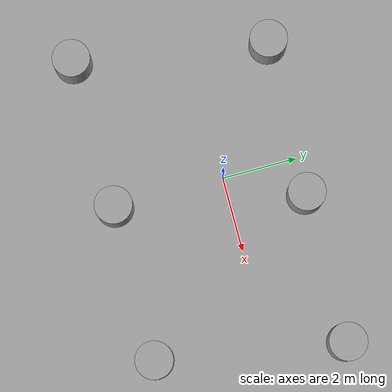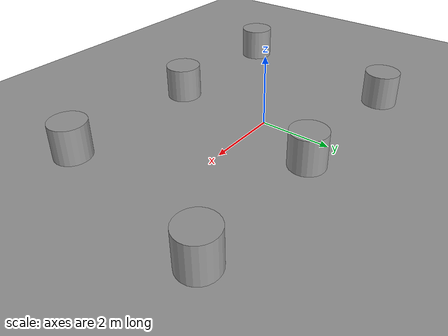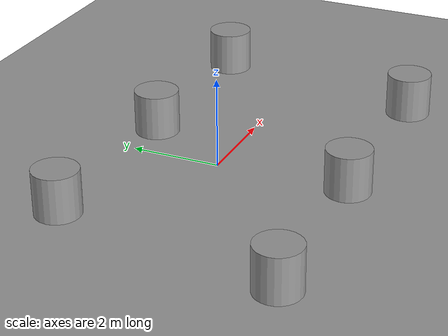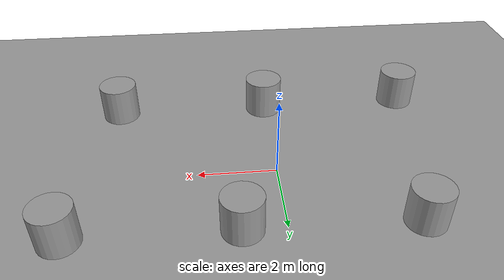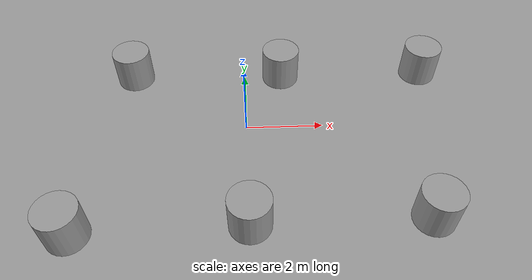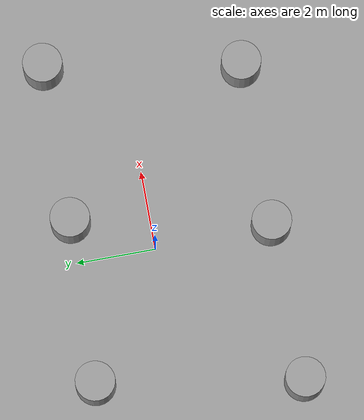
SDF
<sdf version="1.6">
 <world name="default">
  <light name="sun" type="directional">
   <pose>0 0 10 0 -0 0</pose>
   <diffuse>0.8 0.8 0.8 1</diffuse>
   <specular>0.2 0.2 0.2 1</specular>
   <attenuation>
    <range>1000</range>
    <constant>0.9</constant>
    <linear>0.01</linear>
    <quadratic>0.001</quadratic>
   </attenuation>
   <direction>0.5 0.1 -0.9</direction>
  </light>
  <scene><ambient>0.4 0.4 0.4 1</ambient><background>0.7 0.7 0.7 1</background><shadows>1</shadows></scene>
  <physics name="default_physics" default="0" type="ode">
   <max_step_size>0.01</max_step_size>
   <real_time_factor>1</real_time_factor>
   <real_time_update_rate>100</real_time_update_rate>
  </physics>
  <model name="ground_plane_0">
   <static>1</static>
   <link name="link">
    <collision name="collision">
     <geometry><plane><normal>0 0 1</normal><size>100 100</size></plane></geometry>
     <surface><friction><ode><mu>100</mu><mu2>50</mu2></ode></friction></surface>
    </collision>
    <visual name="visual">
     <cast_shadows>0</cast_shadows>
     <geometry><plane><normal>0 0 1</normal><size>100 100</size></plane></geometry>
     <material>
      <script><uri>file://media/materials/scripts/gazebo.material</uri><name>Gazebo/Grey</name></script>
     </material>
    </visual>
    <velocity_decay><linear>0</linear><angular>0</angular></velocity_decay>
   </link>
   <pose>0.497681 0 0 0 -0 0</pose>
  </model>
  <gravity>0 0 -9.8</gravity>
  <magnetic_field>6e-06 2.3e-05 -4.2e-05</magnetic_field>
  <atmosphere type="adiabatic"/>
  <audio><device>default</device></audio>
  <spherical_coordinates>
   <surface_model>EARTH_WGS84</surface_model>
   <latitude_deg>0</latitude_deg>
   <longitude_deg>0</longitude_deg>
   <elevation>0</elevation>
   <heading_deg>0</heading_deg>
  </spherical_coordinates>
  <model name="unit_cylinder">
   <pose>-3.95453 -3.03027 0.499824 -0.000249 -0.000249 -5e-06</pose>
   <link name="link">
    <inertial>
     <mass>1</mass>
     <inertia><ixx>0.145833</ixx><ixy>0</ixy><ixz>0</ixz><iyy>0.145833</iyy><iyz>0</iyz><izz>0.125</izz></inertia>
    </inertial>
    <collision name="collision">
     <geometry><cylinder><radius>0.5</radius><length>1</length></cylinder></geometry>
    </collision>
    <visual name="visual">
     <geometry><cylinder><radius>0.5</radius><length>1</length></cylinder></geometry>
     <material>
      <script><name>Gazebo/Grey</name><uri>file://media/materials/scripts/gazebo.material</uri></script>
     </material>
    </visual>
   </link>
  </model>
  <model name="unit_cylinder_0">
   <pose>0.046162 -2.94575 0.499096 4.8e-05 4.8e-05 -5e-06</pose>
   <link name="link">
    <inertial>
     <mass>1</mass>
     <inertia><ixx>0.145833</ixx><ixy>0</ixy><ixz>0</ixz><iyy>0.145833</iyy><iyz>0</iyz><izz>0.125</izz></inertia>
    </inertial>
    <collision name="collision">
     <geometry><cylinder><radius>0.5</radius><length>1</length></cylinder></geometry>
    </collision>
    <visual name="visual">
     <geometry><cylinder><radius>0.5</radius><length>1</length></cylinder></geometry>
     <material>
      <script><name>Gazebo/Grey</name><uri>file://media/materials/scripts/gazebo.material</uri></script>
     </material>
    </visual>
   </link>
  </model>
  <model name="unit_cylinder_1">
   <pose>4.17392 -2.95268 0.49912 0 0 -4e-06</pose>
   <link name="link">
    <inertial>
     <mass>1</mass>
     <inertia><ixx>0.145833</ixx><ixy>0</ixy><ixz>0</ixz><iyy>0.145833</iyy><iyz>0</iyz><izz>0.125</izz></inertia>
    </inertial>
    <collision name="collision">
     <geometry><cylinder><radius>0.5</radius><length>1</length></cylinder></geometry>
    </collision>
    <visual name="visual">
     <geometry><cylinder><radius>0.5</radius><length>1</length></cylinder></geometry>
     <material>
      <script><name>Gazebo/Grey</name><uri>file://media/materials/scripts/gazebo.material</uri></script>
     </material>
    </visual>
   </link>
  </model>
  <model name="unit_cylinder_2">
   <pose>-3.11984 2.07579 0.499789 0.000422 0.000422 -3e-06</pose>
   <link name="link">
    <inertial>
     <mass>1</mass>
     <inertia><ixx>0.145833</ixx><ixy>0</ixy><ixz>0</ixz><iyy>0.145833</iyy><iyz>0</iyz><izz>0.125</izz></inertia>
    </inertial>
    <collision name="collision">
     <geometry><cylinder><radius>0.5</radius><length>1</length></cylinder></geometry>
    </collision>
    <visual name="visual">
     <geometry><cylinder><radius>0.5</radius><length>1</length></cylinder></geometry>
     <material>
      <script><name>Gazebo/Grey</name><uri>file://media/materials/scripts/gazebo.material</uri></script>
     </material>
    </visual>
   </link>
  </model>
  <model name="unit_cylinder_3">
   <pose>1.01818 1.9691 0.499824 -0.000249 -0.000249 -2e-06</pose>
   <link name="link">
    <inertial>
     <mass>1</mass>
     <inertia><ixx>0.145833</ixx><ixy>0</ixy><ixz>0</ixz><iyy>0.145833</iyy><iyz>0</iyz><izz>0.125</izz></inertia>
    </inertial>
    <collision name="collision">
     <geometry><cylinder><radius>0.5</radius><length>1</length></cylinder></geometry>
    </collision>
    <visual name="visual">
     <geometry><cylinder><radius>0.5</radius><length>1</length></cylinder></geometry>
     <material>
      <script><name>Gazebo/Grey</name><uri>file://media/materials/scripts/gazebo.material</uri></script>
     </material>
    </visual>
   </link>
  </model>
  <model name="unit_cylinder_4">
   <pose>5.00765 1.95564 0.499096 4.8e-05 4.8e-05 -1e-06</pose>
   <link name="link">
    <inertial>
     <mass>1</mass>
     <inertia><ixx>0.145833</ixx><ixy>0</ixy><ixz>0</ixz><iyy>0.145833</iyy><iyz>0</iyz><izz>0.125</izz></inertia>
    </inertial>
    <collision name="collision">
     <geometry><cylinder><radius>0.5</radius><length>1</length></cylinder></geometry>
    </collision>
    <visual name="visual">
     <geometry><cylinder><radius>0.5</radius><length>1</length></cylinder></geometry>
     <material>
      <script><name>Gazebo/Grey</name><uri>file://media/materials/scripts/gazebo.material</uri></script>
     </material>
    </visual>
   </link>
  </model>
 </world>
</sdf>
